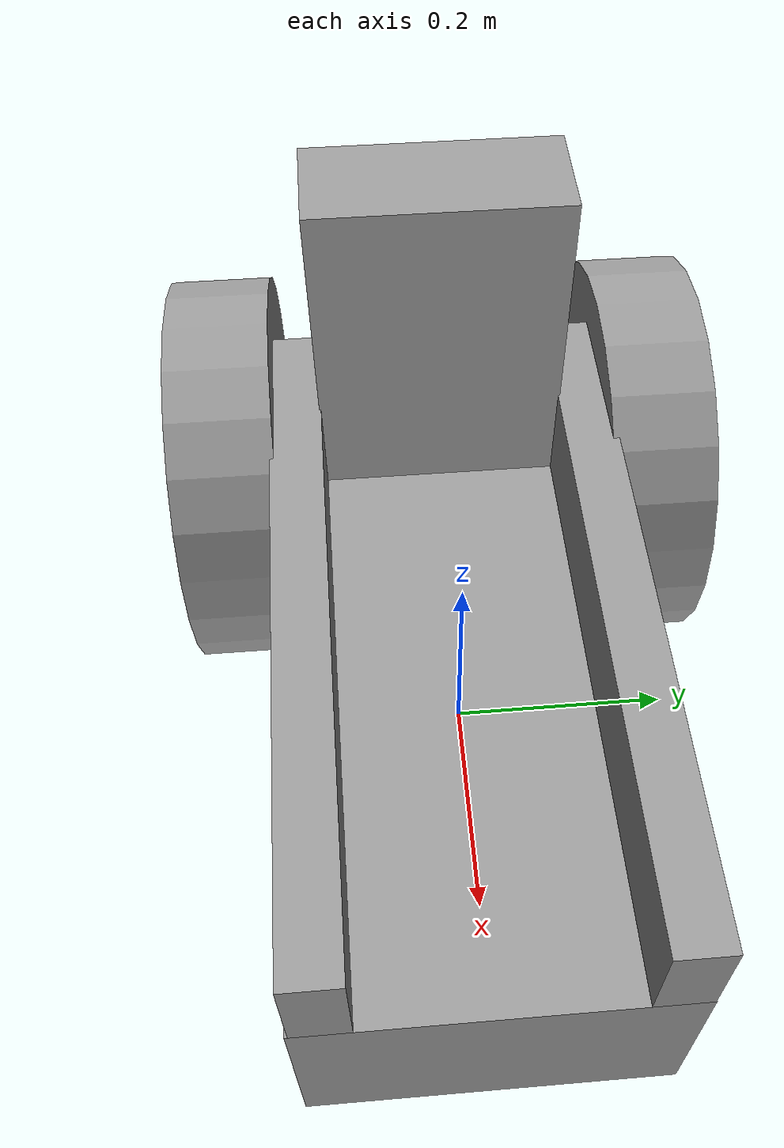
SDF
<?xml version='1.0'?>
<sdf version='1.6'>
  <model name='EmpressMobile'>
    <link name='main_chassis'>
      <pose frame=''>0 0 0 0 -0 0</pose>
      <inertial>
        <mass>1</mass>
        <inertia>
          <ixx>0.166667</ixx>
          <ixy>0</ixy>
          <ixz>0</ixz>
          <iyy>0.166667</iyy>
          <iyz>0</iyz>
          <izz>0.166667</izz>
        </inertia>
        <pose frame=''>0 0 0 0 -0 0</pose>
      </inertial>
      <self_collide>0</self_collide>
      <kinematic>0</kinematic>
      <gravity>1</gravity>
      <visual name='bed_visual'>
        <pose frame=''>0 0 0 0 -0 0</pose>
        <geometry>
          <box>
            <size>0.666667 0.333333 0.2</size>
          </box>
        </geometry>
        <material>
          <lighting>1</lighting>
          <script>
            <uri>file://media/materials/scripts/gazebo.material</uri>
            <name>Gazebo/Grey</name>
          </script>
          <shader type='pixel'>
            <normal_map>__default__</normal_map>
          </shader>
          <ambient>0.3 0.3 0.3 1</ambient>
          <diffuse>0.7 0.7 0.7 1</diffuse>
          <specular>0.01 0.01 0.01 1</specular>
          <emissive>0 0 0 1</emissive>
        </material>
        <transparency>0</transparency>
        <cast_shadows>1</cast_shadows>
      </visual>
      <visual name='caster_visual'>
        <pose frame=''>0.195335 -0.005477 -0.1 0 -0 0</pose>
        <geometry>
          <sphere>
            <radius>0.1</radius>
          </sphere>
        </geometry>
        <material>
          <shader type='pixel'>
            <normal_map>__default__</normal_map>
          </shader>
        </material>
        <cast_shadows>1</cast_shadows>
        <transparency>0</transparency>
      </visual>
      <visual name='throne_right_armrest_visual'>
        <pose frame=''>0 -0.139087 0.15 0 -0 0</pose>
        <geometry>
          <box>
            <size>0.666667 0.05 0.1</size>
          </box>
        </geometry>
        <material>
          <lighting>1</lighting>
          <script>
            <uri>file://media/materials/scripts/gazebo.material</uri>
            <name>Gazebo/Grey</name>
          </script>
          <shader type='pixel'>
            <normal_map>__default__</normal_map>
          </shader>
          <ambient>0.3 0.3 0.3 1</ambient>
          <diffuse>0.7 0.7 0.7 1</diffuse>
          <specular>0.01 0.01 0.01 1</specular>
          <emissive>0 0 0 1</emissive>
        </material>
        <transparency>0</transparency>
        <cast_shadows>1</cast_shadows>
      </visual>
      <visual name='throne_left_armrest_visual'>
        <pose frame=''>0 0.140913 0.15 0 -0 0</pose>
        <geometry>
          <box>
            <size>0.666667 0.05 0.1</size>
          </box>
        </geometry>
        <material>
          <lighting>1</lighting>
          <script>
            <uri>file://media/materials/scripts/gazebo.material</uri>
            <name>Gazebo/Grey</name>
          </script>
          <shader type='pixel'>
            <normal_map>__default__</normal_map>
          </shader>
          <ambient>0.3 0.3 0.3 1</ambient>
          <diffuse>0.7 0.7 0.7 1</diffuse>
          <specular>0.01 0.01 0.01 1</specular>
          <emissive>0 0 0 1</emissive>
        </material>
        <transparency>0</transparency>
        <cast_shadows>1</cast_shadows>
      </visual>
      <visual name='throne_backrest_visual'>
        <pose frame=''>-0.28 0.000913 0.25 0 -0 0</pose>
        <geometry>
          <box>
            <size>0.1 0.233333 0.333333</size>
          </box>
        </geometry>
        <material>
          <lighting>1</lighting>
          <script>
            <uri>file://media/materials/scripts/gazebo.material</uri>
            <name>Gazebo/Grey</name>
          </script>
          <shader type='pixel'>
            <normal_map>__default__</normal_map>
          </shader>
          <ambient>0.3 0.3 0.3 1</ambient>
          <diffuse>0.7 0.7 0.7 1</diffuse>
          <specular>0.01 0.01 0.01 1</specular>
          <emissive>0 0 0 1</emissive>
        </material>
        <transparency>0</transparency>
        <cast_shadows>1</cast_shadows>
      </visual>
      <collision name='bed_collision'>
        <laser_retro>0</laser_retro>
        <max_contacts>10</max_contacts>
        <pose frame=''>0 0 0 0 -0 0</pose>
        <geometry>
          <box>
            <size>0.666667 0.333333 0.2</size>
          </box>
        </geometry>
        <surface>
          <friction>
            <ode>
              <mu>1</mu>
              <mu2>1</mu2>
              <fdir1>0 0 0</fdir1>
              <slip1>0</slip1>
              <slip2>0</slip2>
            </ode>
            <torsional>
              <coefficient>1</coefficient>
              <patch_radius>0</patch_radius>
              <surface_radius>0</surface_radius>
              <use_patch_radius>1</use_patch_radius>
              <ode>
                <slip>0</slip>
              </ode>
            </torsional>
          </friction>
          <bounce>
            <restitution_coefficient>0</restitution_coefficient>
            <threshold>1e+06</threshold>
          </bounce>
          <contact>
            <collide_without_contact>0</collide_without_contact>
            <collide_without_contact_bitmask>1</collide_without_contact_bitmask>
            <collide_bitmask>1</collide_bitmask>
            <ode>
              <soft_cfm>0</soft_cfm>
              <soft_erp>0.2</soft_erp>
              <kp>1e+13</kp>
              <kd>1</kd>
              <max_vel>0.01</max_vel>
              <min_depth>0</min_depth>
            </ode>
            <bullet>
              <split_impulse>1</split_impulse>
              <split_impulse_penetration_threshold>-0.01</split_impulse_penetration_threshold>
              <soft_cfm>0</soft_cfm>
              <soft_erp>0.2</soft_erp>
              <kp>1e+13</kp>
              <kd>1</kd>
            </bullet>
          </contact>
        </surface>
      </collision>
      <collision name='caster_collision'>
        <laser_retro>0</laser_retro>
        <max_contacts>10</max_contacts>
        <pose frame=''>0.195335 -0.005477 -0.1 0 -0 0</pose>
        <geometry>
          <sphere>
            <radius>0.1</radius>
          </sphere>
        </geometry>
        <surface>
          <friction>
            <ode>
              <mu>0</mu>
              <mu2>0</mu2>
              <fdir1>0 0 0</fdir1>
              <slip1>1</slip1>
              <slip2>1</slip2>
            </ode>
            <torsional>
              <coefficient>1</coefficient>
              <patch_radius>0</patch_radius>
              <surface_radius>0</surface_radius>
              <use_patch_radius>1</use_patch_radius>
              <ode>
                <slip>0</slip>
              </ode>
            </torsional>
          </friction>
          <bounce>
            <restitution_coefficient>0</restitution_coefficient>
            <threshold>1e+06</threshold>
          </bounce>
          <contact>
            <collide_without_contact>0</collide_without_contact>
            <collide_without_contact_bitmask>1</collide_without_contact_bitmask>
            <collide_bitmask>1</collide_bitmask>
            <ode>
              <soft_cfm>0</soft_cfm>
              <soft_erp>0.2</soft_erp>
              <kp>1e+13</kp>
              <kd>1</kd>
              <max_vel>0.01</max_vel>
              <min_depth>0</min_depth>
            </ode>
            <bullet>
              <split_impulse>1</split_impulse>
              <split_impulse_penetration_threshold>-0.01</split_impulse_penetration_threshold>
              <soft_cfm>0</soft_cfm>
              <soft_erp>0.2</soft_erp>
              <kp>1e+13</kp>
              <kd>1</kd>
            </bullet>
          </contact>
        </surface>
      </collision>
      <collision name='throne_right_armrest_collision'>
        <laser_retro>0</laser_retro>
        <max_contacts>10</max_contacts>
        <pose frame=''>0 -0.139087 0.15 0 -0 0</pose>
        <geometry>
          <box>
            <size>0.666667 0.05 0.1</size>
          </box>
        </geometry>
        <surface>
          <friction>
            <ode>
              <mu>1</mu>
              <mu2>1</mu2>
              <fdir1>0 0 0</fdir1>
              <slip1>0</slip1>
              <slip2>0</slip2>
            </ode>
            <torsional>
              <coefficient>1</coefficient>
              <patch_radius>0</patch_radius>
              <surface_radius>0</surface_radius>
              <use_patch_radius>1</use_patch_radius>
              <ode>
                <slip>0</slip>
              </ode>
            </torsional>
          </friction>
          <bounce>
            <restitution_coefficient>0</restitution_coefficient>
            <threshold>1e+06</threshold>
          </bounce>
          <contact>
            <collide_without_contact>0</collide_without_contact>
            <collide_without_contact_bitmask>1</collide_without_contact_bitmask>
            <collide_bitmask>1</collide_bitmask>
            <ode>
              <soft_cfm>0</soft_cfm>
              <soft_erp>0.2</soft_erp>
              <kp>1e+13</kp>
              <kd>1</kd>
              <max_vel>0.01</max_vel>
              <min_depth>0</min_depth>
            </ode>
            <bullet>
              <split_impulse>1</split_impulse>
              <split_impulse_penetration_threshold>-0.01</split_impulse_penetration_threshold>
              <soft_cfm>0</soft_cfm>
              <soft_erp>0.2</soft_erp>
              <kp>1e+13</kp>
              <kd>1</kd>
            </bullet>
          </contact>
        </surface>
      </collision>
      <collision name='throne_left_armrest_collision'>
        <laser_retro>0</laser_retro>
        <max_contacts>10</max_contacts>
        <pose frame=''>0 0.140913 0.15 0 -0 0</pose>
        <geometry>
          <box>
            <size>0.666667 0.05 0.1</size>
          </box>
        </geometry>
        <surface>
          <friction>
            <ode>
              <mu>1</mu>
              <mu2>1</mu2>
              <fdir1>0 0 0</fdir1>
              <slip1>0</slip1>
              <slip2>0</slip2>
            </ode>
            <torsional>
              <coefficient>1</coefficient>
              <patch_radius>0</patch_radius>
              <surface_radius>0</surface_radius>
              <use_patch_radius>1</use_patch_radius>
              <ode>
                <slip>0</slip>
              </ode>
            </torsional>
          </friction>
          <bounce>
            <restitution_coefficient>0</restitution_coefficient>
            <threshold>1e+06</threshold>
          </bounce>
          <contact>
            <collide_without_contact>0</collide_without_contact>
            <collide_without_contact_bitmask>1</collide_without_contact_bitmask>
            <collide_bitmask>1</collide_bitmask>
            <ode>
              <soft_cfm>0</soft_cfm>
              <soft_erp>0.2</soft_erp>
              <kp>1e+13</kp>
              <kd>1</kd>
              <max_vel>0.01</max_vel>
              <min_depth>0</min_depth>
            </ode>
            <bullet>
              <split_impulse>1</split_impulse>
              <split_impulse_penetration_threshold>-0.01</split_impulse_penetration_threshold>
              <soft_cfm>0</soft_cfm>
              <soft_erp>0.2</soft_erp>
              <kp>1e+13</kp>
              <kd>1</kd>
            </bullet>
          </contact>
        </surface>
      </collision>
      <collision name='throne_backrest_collision'>
        <laser_retro>0</laser_retro>
        <max_contacts>10</max_contacts>
        <pose frame=''>-0.28 0.000913 0.25 0 -0 0</pose>
        <geometry>
          <box>
            <size>0.1 0.233333 0.333333</size>
          </box>
        </geometry>
        <surface>
          <friction>
            <ode>
              <mu>1</mu>
              <mu2>1</mu2>
              <fdir1>0 0 0</fdir1>
              <slip1>0</slip1>
              <slip2>0</slip2>
            </ode>
            <torsional>
              <coefficient>1</coefficient>
              <patch_radius>0</patch_radius>
              <surface_radius>0</surface_radius>
              <use_patch_radius>1</use_patch_radius>
              <ode>
                <slip>0</slip>
              </ode>
            </torsional>
          </friction>
          <bounce>
            <restitution_coefficient>0</restitution_coefficient>
            <threshold>1e+06</threshold>
          </bounce>
          <contact>
            <collide_without_contact>0</collide_without_contact>
            <collide_without_contact_bitmask>1</collide_without_contact_bitmask>
            <collide_bitmask>1</collide_bitmask>
            <ode>
              <soft_cfm>0</soft_cfm>
              <soft_erp>0.2</soft_erp>
              <kp>1e+13</kp>
              <kd>1</kd>
              <max_vel>0.01</max_vel>
              <min_depth>0</min_depth>
            </ode>
            <bullet>
              <split_impulse>1</split_impulse>
              <split_impulse_penetration_threshold>-0.01</split_impulse_penetration_threshold>
              <soft_cfm>0</soft_cfm>
              <soft_erp>0.2</soft_erp>
              <kp>1e+13</kp>
              <kd>1</kd>
            </bullet>
          </contact>
        </surface>
      </collision>
    </link>
    <link name='left_wheel'>
      <pose frame=''>-0.3 0.21 0.05 1.5708 -0 0</pose>
      <inertial>
        <mass>1</mass>
        <inertia>
          <ixx>0.145833</ixx>
          <ixy>0</ixy>
          <ixz>0</ixz>
          <iyy>0.145833</iyy>
          <iyz>0</iyz>
          <izz>0.125</izz>
        </inertia>
        <pose frame=''>0 0 0 0 -0 0</pose>
      </inertial>
      <self_collide>0</self_collide>
      <kinematic>0</kinematic>
      <gravity>1</gravity>
      <visual name='visual'>
        <pose frame=''>0 0 0 0 -0 0</pose>
        <geometry>
          <cylinder>
            <radius>0.2</radius>
            <length>0.1</length>
          </cylinder>
        </geometry>
        <material>
          <lighting>1</lighting>
          <script>
            <uri>file://media/materials/scripts/gazebo.material</uri>
            <name>Gazebo/Grey</name>
          </script>
          <shader type='pixel'>
            <normal_map>__default__</normal_map>
          </shader>
          <ambient>0.3 0.3 0.3 1</ambient>
          <diffuse>0.7 0.7 0.7 1</diffuse>
          <specular>0.01 0.01 0.01 1</specular>
          <emissive>0 0 0 1</emissive>
        </material>
        <transparency>0</transparency>
        <cast_shadows>1</cast_shadows>
      </visual>
      <collision name='collision'>
        <laser_retro>0</laser_retro>
        <max_contacts>10</max_contacts>
        <pose frame=''>0 0 0 0 -0 0</pose>
        <geometry>
          <cylinder>
            <radius>0.2</radius>
            <length>0.1</length>
          </cylinder>
        </geometry>
        <surface>
          <friction>
            <ode>
              <mu>1</mu>
              <mu2>1</mu2>
              <fdir1>0 0 0</fdir1>
              <slip1>0</slip1>
              <slip2>0</slip2>
            </ode>
            <torsional>
              <coefficient>1</coefficient>
              <patch_radius>0</patch_radius>
              <surface_radius>0</surface_radius>
              <use_patch_radius>1</use_patch_radius>
              <ode>
                <slip>0</slip>
              </ode>
            </torsional>
          </friction>
          <bounce>
            <restitution_coefficient>0</restitution_coefficient>
            <threshold>1e+06</threshold>
          </bounce>
          <contact>
            <collide_without_contact>0</collide_without_contact>
            <collide_without_contact_bitmask>1</collide_without_contact_bitmask>
            <collide_bitmask>1</collide_bitmask>
            <ode>
              <soft_cfm>0</soft_cfm>
              <soft_erp>0.2</soft_erp>
              <kp>1e+13</kp>
              <kd>1</kd>
              <max_vel>0.01</max_vel>
              <min_depth>0</min_depth>
            </ode>
            <bullet>
              <split_impulse>1</split_impulse>
              <split_impulse_penetration_threshold>-0.01</split_impulse_penetration_threshold>
              <soft_cfm>0</soft_cfm>
              <soft_erp>0.2</soft_erp>
              <kp>1e+13</kp>
              <kd>1</kd>
            </bullet>
          </contact>
        </surface>
      </collision>
    </link>
    <link name='right_wheel'>
      <pose frame=''>-0.3 -0.21 0.05 1.5708 -0 0</pose>
      <inertial>
        <mass>1</mass>
        <inertia>
          <ixx>0.145833</ixx>
          <ixy>0</ixy>
          <ixz>0</ixz>
          <iyy>0.145833</iyy>
          <iyz>0</iyz>
          <izz>0.125</izz>
        </inertia>
        <pose frame=''>0 0 0 0 -0 0</pose>
      </inertial>
      <self_collide>0</self_collide>
      <kinematic>0</kinematic>
      <gravity>1</gravity>
      <visual name='visual'>
        <pose frame=''>0 0 0 0 -0 0</pose>
        <geometry>
          <cylinder>
            <radius>0.2</radius>
            <length>0.1</length>
          </cylinder>
        </geometry>
        <material>
          <lighting>1</lighting>
          <script>
            <uri>file://media/materials/scripts/gazebo.material</uri>
            <name>Gazebo/Grey</name>
          </script>
          <shader type='pixel'>
            <normal_map>__default__</normal_map>
          </shader>
          <ambient>0.3 0.3 0.3 1</ambient>
          <diffuse>0.7 0.7 0.7 1</diffuse>
          <specular>0.01 0.01 0.01 1</specular>
          <emissive>0 0 0 1</emissive>
        </material>
        <transparency>0</transparency>
        <cast_shadows>1</cast_shadows>
      </visual>
      <collision name='collision'>
        <laser_retro>0</laser_retro>
        <max_contacts>10</max_contacts>
        <pose frame=''>0 0 0 0 -0 0</pose>
        <geometry>
          <cylinder>
            <radius>0.2</radius>
            <length>0.1</length>
          </cylinder>
        </geometry>
        <surface>
          <friction>
            <ode>
              <mu>1</mu>
              <mu2>1</mu2>
              <fdir1>0 0 0</fdir1>
              <slip1>0</slip1>
              <slip2>0</slip2>
            </ode>
            <torsional>
              <coefficient>1</coefficient>
              <patch_radius>0</patch_radius>
              <surface_radius>0</surface_radius>
              <use_patch_radius>1</use_patch_radius>
              <ode>
                <slip>0</slip>
              </ode>
            </torsional>
          </friction>
          <bounce>
            <restitution_coefficient>0</restitution_coefficient>
            <threshold>1e+06</threshold>
          </bounce>
          <contact>
            <collide_without_contact>0</collide_without_contact>
            <collide_without_contact_bitmask>1</collide_without_contact_bitmask>
            <collide_bitmask>1</collide_bitmask>
            <ode>
              <soft_cfm>0</soft_cfm>
              <soft_erp>0.2</soft_erp>
              <kp>1e+13</kp>
              <kd>1</kd>
              <max_vel>0.01</max_vel>
              <min_depth>0</min_depth>
            </ode>
            <bullet>
              <split_impulse>1</split_impulse>
              <split_impulse_penetration_threshold>-0.01</split_impulse_penetration_threshold>
              <soft_cfm>0</soft_cfm>
              <soft_erp>0.2</soft_erp>
              <kp>1e+13</kp>
              <kd>1</kd>
            </bullet>
          </contact>
        </surface>
      </collision>
    </link>
    <joint name='main_chassis_right_wheel_joint' type='revolute'>
      <parent>main_chassis</parent>
      <child>right_wheel</child>
      <pose frame=''>0 0 0 0 -0 0</pose>
      <axis>
        <xyz>0 0 1</xyz>
        <use_parent_model_frame>0</use_parent_model_frame>
        <limit>
          <lower>-1.79769e+308</lower>
          <upper>1.79769e+308</upper>
          <effort>-1</effort>
          <velocity>-1</velocity>
        </limit>
        <dynamics>
          <spring_reference>0</spring_reference>
          <spring_stiffness>0</spring_stiffness>
          <damping>0</damping>
          <friction>0</friction>
        </dynamics>
      </axis>
      <physics>
        <ode>
          <limit>
            <cfm>0</cfm>
            <erp>0.2</erp>
          </limit>
          <suspension>
            <cfm>0</cfm>
            <erp>0.2</erp>
          </suspension>
        </ode>
      </physics>
    </joint>
    <joint name='main_chassis_left_wheel_joint' type='revolute'>
      <parent>main_chassis</parent>
      <child>left_wheel</child>
      <pose frame=''>0 0 0 0 -0 0</pose>
      <axis>
        <xyz>0 0 1</xyz>
        <use_parent_model_frame>0</use_parent_model_frame>
        <limit>
          <lower>-1.79769e+308</lower>
          <upper>1.79769e+308</upper>
          <effort>-1</effort>
          <velocity>-1</velocity>
        </limit>
        <dynamics>
          <spring_reference>0</spring_reference>
          <spring_stiffness>0</spring_stiffness>
          <damping>0</damping>
          <friction>0</friction>
        </dynamics>
      </axis>
      <physics>
        <ode>
          <limit>
            <cfm>0</cfm>
            <erp>0.2</erp>
          </limit>
          <suspension>
            <cfm>0</cfm>
            <erp>0.2</erp>
          </suspension>
        </ode>
      </physics>
    </joint>
    <static>0</static>
    <allow_auto_disable>1</allow_auto_disable>
  </model>
</sdf>
